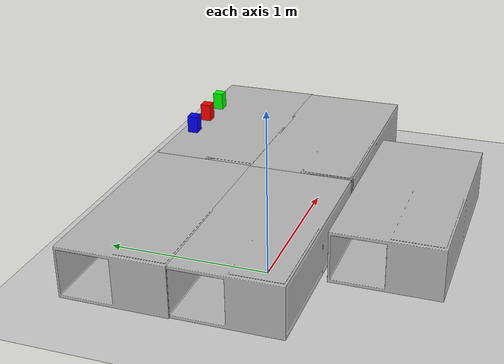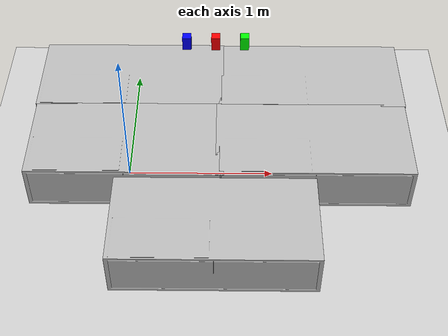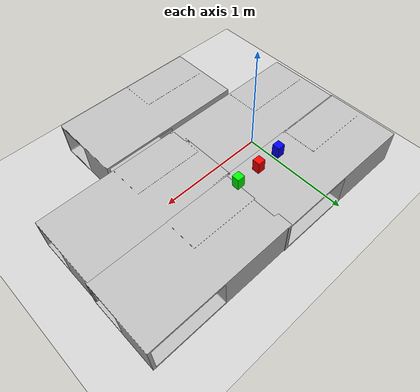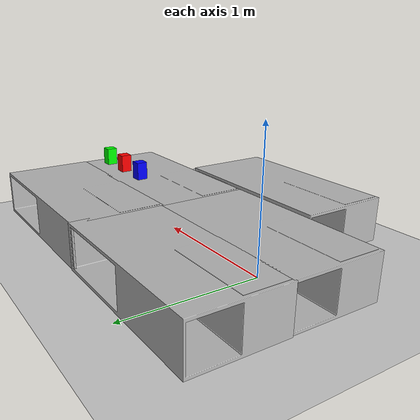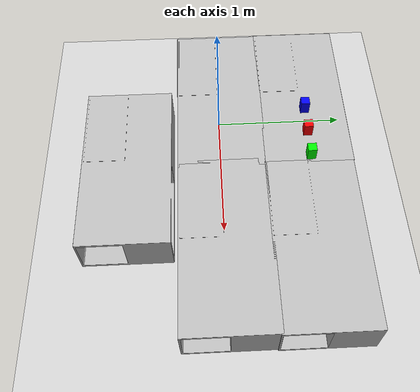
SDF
<sdf version='1.9'>
  <world name='empty_world'>
    <gravity>0 0 -9.8</gravity>
    <magnetic_field>6e-06 2.3e-05 -4.2e-05</magnetic_field>
    <atmosphere type='adiabatic'/>
    <physics type='ode'>
      <max_step_size>0.001</max_step_size>
      <real_time_factor>1</real_time_factor>
      <real_time_update_rate>1000</real_time_update_rate>
    </physics>
    <scene>
      <ambient>0.4 0.4 0.4 1</ambient>
      <background>0.7 0.7 0.7 1</background>
      <shadows>true</shadows>
    </scene>

 <!-- ================= RED BOX ================= -->
<model name="red_box">
  <static>false</static>
  <link name="red_link">
    <pose>0.6 0.6 0.70 0 0 0</pose>
    <inertial>
      <mass>0.5</mass>
      <inertia>
        <ixx>0.001</ixx>
        <ixy>0</ixy>
        <ixz>0</ixz>
        <iyy>0.001</iyy>
        <iyz>0</iyz>
        <izz>0.001</izz>
      </inertia>
    </inertial>
    <collision name="red_collision">
      <geometry>
        <box><size>0.06 0.06 0.1</size></box>
      </geometry>
      <surface>
        <friction>
          <ode>
            <mu>10.0</mu>
            <mu2>10.0</mu2>
          </ode>
        </friction>
        <contact>
          <ode>
            <max_vel>0.001</max_vel>
            <min_depth>0.001</min_depth>
          </ode>
        </contact>
      </surface>
    </collision>
    <visual name="red_visual">
      <geometry>
        <box><size>0.06 0.06 0.1</size></box>
      </geometry>
      <material>
        <ambient>1 0 0 1</ambient>
        <diffuse>1 0 0 1</diffuse>
      </material>
    </visual>
  </link>
</model>

<!-- ================= GREEN BOX ================= -->
<model name="green_box">
  <static>false</static>
  <link name="green_link">
    <pose>0.8 0.6 0.70 0 0 0</pose>
    <inertial>
      <mass>0.5</mass>
      <inertia>
        <ixx>0.001</ixx>
        <ixy>0</ixy>
        <ixz>0</ixz>
        <iyy>0.001</iyy>
        <iyz>0</iyz>
        <izz>0.001</izz>
      </inertia>
    </inertial>
    <collision name="green_collision">
      <geometry>
        <box><size>0.06 0.06 0.1</size></box>
      </geometry>
      <surface>
        <friction>
          <ode>
            <mu>10.0</mu>
            <mu2>10.0</mu2>
          </ode>
        </friction>
        <contact>
          <ode>
            <max_vel>0.001</max_vel>
            <min_depth>0.001</min_depth>
          </ode>
        </contact>
      </surface>
    </collision>
    <visual name="green_visual">
      <geometry>
        <box><size>0.06 0.06 0.1</size></box>
      </geometry>
      <material>
        <ambient>0 1 0 1</ambient>
        <diffuse>0 1 0 1</diffuse>
      </material>
    </visual>
  </link>
</model>

<!-- ================= BLUE BOX ================= -->
<model name="blue_box">
  <static>false</static>
  <link name="blue_link">
    <pose>0.4 0.6 0.70 0 0 0</pose>
    <inertial>
      <mass>0.5</mass>
      <inertia>
        <ixx>0.001</ixx>
        <ixy>0</ixy>
        <ixz>0</ixz>
        <iyy>0.001</iyy>
        <iyz>0</iyz>
        <izz>0.001</izz>
      </inertia>
    </inertial>
    <collision name="blue_collision">
      <geometry>
        <box><size>0.06 0.06 0.1</size></box>
      </geometry>
      <surface>
        <friction>
          <ode>
            <mu>10.0</mu>
            <mu2>10.0</mu2>
          </ode>
        </friction>
        <contact>
          <ode>
            <max_vel>0.001</max_vel>
            <min_depth>0.001</min_depth>
          </ode>
        </contact>
      </surface>
    </collision>
    <visual name="blue_visual">
      <geometry>
        <box><size>0.06 0.06 0.1</size></box>
      </geometry>
      <material>
        <ambient>0 0 1 1</ambient>
        <diffuse>0 0 1 1</diffuse>
      </material>
    </visual>
  </link>
</model>

    <model name='CoffeeTable_5'>
      <static>true</static>
      <model name='aws_robomaker_residential_CoffeeTable_01'>
        <link name='link'>
          <inertial>
            <mass>21.699999999999999</mass>
            <inertia>
              <ixx>0.81374999999999975</ixx>
              <ixy>0</ixy>
              <ixz>0</ixz>
              <iyy>2.76675</iyy>
              <iyz>0</iyz>
              <izz>3.254</izz>
            </inertia>
          </inertial>
          <collision name='collision'>
            <geometry>
              <mesh>
                <uri>model://aws_robomaker_residential_CoffeeTable_01/meshes/aws_CoffeeTable_01_collision.DAE</uri>
                <scale>1 1 1</scale>
              </mesh>
            </geometry>
            <surface>
              <contact>
                <ode>
                  <max_vel>0.01</max_vel>
                </ode>
              </contact>
            </surface>
          </collision>
          <visual name='visual'>
            <geometry>
              <mesh>
                <uri>model://aws_robomaker_residential_CoffeeTable_01/meshes/aws_CoffeeTable_01_visual.DAE</uri>
              </mesh>
            </geometry>
            <meta>
              <layer>1</layer>
            </meta>
          </visual>
        </link>
        <static>true</static>
      </model>
      <pose>0.6 -0.7 0.041983 0 -0 0</pose>
      <self_collide>false</self_collide>
    </model>

    <model name='CoffeeTable_1'>
      <static>true</static>
      <model name='aws_robomaker_residential_CoffeeTable_01'>
        <link name='link'>
          <inertial>
            <mass>21.699999999999999</mass>
            <inertia>
              <ixx>0.81374999999999975</ixx>
              <ixy>0</ixy>
              <ixz>0</ixz>
              <iyy>2.76675</iyy>
              <iyz>0</iyz>
              <izz>3.254</izz>
            </inertia>
          </inertial>
          <collision name='collision'>
            <geometry>
              <mesh>
                <uri>model://aws_robomaker_residential_CoffeeTable_01/meshes/aws_CoffeeTable_01_collision.DAE</uri>
                <scale>1 1 1</scale>
              </mesh>
            </geometry>
            <surface>
              <contact>
                <ode>
                  <max_vel>0.01</max_vel>
                </ode>
              </contact>
            </surface>
          </collision>
          <visual name='visual'>
            <geometry>
              <mesh>
                <uri>model://aws_robomaker_residential_CoffeeTable_01/meshes/aws_CoffeeTable_01_visual.DAE</uri>
              </mesh>
            </geometry>
            <meta>
              <layer>1</layer>
            </meta>
          </visual>
        </link>
        <static>true</static>
      </model>
      <pose>0 0 0.041983 0 -0 0</pose>
      <self_collide>false</self_collide>
    </model>
    <model name='CoffeeTable_2'>
      <static>true</static>
      <model name='aws_robomaker_residential_CoffeeTable_01'>
        <link name='link'>
          <inertial>
            <mass>21.699999999999999</mass>
            <inertia>
              <ixx>0.81374999999999975</ixx>
              <ixy>0</ixy>
              <ixz>0</ixz>
              <iyy>2.76675</iyy>
              <iyz>0</iyz>
              <izz>3.254</izz>
            </inertia>
          </inertial>
          <collision name='collision'>
            <geometry>
              <mesh>
                <uri>model://aws_robomaker_residential_CoffeeTable_01/meshes/aws_CoffeeTable_01_collision.DAE</uri>
                <scale>1 1 1</scale>
              </mesh>
            </geometry>
            <surface>
              <contact>
                <ode>
                  <max_vel>0.01</max_vel>
                </ode>
              </contact>
            </surface>
          </collision>
          <visual name='visual'>
            <geometry>
              <mesh>
                <uri>model://aws_robomaker_residential_CoffeeTable_01/meshes/aws_CoffeeTable_01_visual.DAE</uri>
              </mesh>
            </geometry>
            <meta>
              <layer>1</layer>
            </meta>
          </visual>
        </link>
        <static>true</static>
      </model>
      <pose>1.2577 0 0.041983 0 -0 0</pose>
      <self_collide>false</self_collide>
    </model>
    <model name='CoffeeTable_3'>
      <static>true</static>
      <model name='aws_robomaker_residential_CoffeeTable_01'>
        <link name='link'>
          <inertial>
            <mass>21.699999999999999</mass>
            <inertia>
              <ixx>0.81374999999999975</ixx>
              <ixy>0</ixy>
              <ixz>0</ixz>
              <iyy>2.76675</iyy>
              <iyz>0</iyz>
              <izz>3.254</izz>
            </inertia>
          </inertial>
          <collision name='collision'>
            <geometry>
              <mesh>
                <uri>model://aws_robomaker_residential_CoffeeTable_01/meshes/aws_CoffeeTable_01_collision.DAE</uri>
                <scale>1 1 1</scale>
              </mesh>
            </geometry>
            <surface>
              <contact>
                <ode>
                  <max_vel>0.01</max_vel>
                </ode>
              </contact>
            </surface>
          </collision>
          <visual name='visual'>
            <geometry>
              <mesh>
                <uri>model://aws_robomaker_residential_CoffeeTable_01/meshes/aws_CoffeeTable_01_visual.DAE</uri>
              </mesh>
            </geometry>
            <meta>
              <layer>1</layer>
            </meta>
          </visual>
        </link>
        <static>true</static>
      </model>
      <pose>1.26554 0.637963 0.041983 0 -0 0</pose>
      <self_collide>false</self_collide>
    </model>
    <model name='CoffeeTable_4'>
      <static>true</static>
      <model name='aws_robomaker_residential_CoffeeTable_01'>
        <link name='link'>
          <inertial>
            <mass>21.699999999999999</mass>
            <inertia>
              <ixx>0.81374999999999975</ixx>
              <ixy>0</ixy>
              <ixz>0</ixz>
              <iyy>2.76675</iyy>
              <iyz>0</iyz>
              <izz>3.254</izz>
            </inertia>
          </inertial>
          <collision name='collision'>
            <geometry>
              <mesh>
                <uri>model://aws_robomaker_residential_CoffeeTable_01/meshes/aws_CoffeeTable_01_collision.DAE</uri>
                <scale>1 1 1</scale>
              </mesh>
            </geometry>
            <surface>
              <contact>
                <ode>
                  <max_vel>0.01</max_vel>
                </ode>
              </contact>
            </surface>
          </collision>
          <visual name='visual'>
            <geometry>
              <mesh>
                <uri>model://aws_robomaker_residential_CoffeeTable_01/meshes/aws_CoffeeTable_01_visual.DAE</uri>
              </mesh>
            </geometry>
            <meta>
              <layer>1</layer>
            </meta>
          </visual>
        </link>
        <static>true</static>
      </model>
      <pose>-0.008642 0.643146 0.041983 0 -0 0</pose>
      <self_collide>false</self_collide>
    </model>
    <model name='ground_plane'>
      <static>true</static>
      <link name='link'>
        <collision name='collision'>
          <geometry>
            <plane>
              <normal>0 0 1</normal>
              <size>1 1</size>
            </plane>
          </geometry>
          <surface>
            <friction>
              <ode/>
            </friction>
            <bounce/>
            <contact/>
          </surface>
        </collision>
        <visual name='visual'>
          <geometry>
            <plane>
              <normal>0 0 1</normal>
              <size>100 100</size>
            </plane>
          </geometry>
          <material>
            <ambient>0.8 0.8 0.8 1</ambient>
            <diffuse>0.8 0.8 0.8 1</diffuse>
            <specular>0.8 0.8 0.8 1</specular>
          </material>
        </visual>
        <pose>0 0 0 0 -0 0</pose>
        <inertial>
          <pose>0 0 0 0 -0 0</pose>
          <mass>1</mass>
          <inertia>
            <ixx>1</ixx>
            <ixy>0</ixy>
            <ixz>0</ixz>
            <iyy>1</iyy>
            <iyz>0</iyz>
            <izz>1</izz>
          </inertia>
        </inertial>
        <enable_wind>false</enable_wind>
      </link>
      <pose>0 0 0 0 -0 0</pose>
      <self_collide>false</self_collide>
    </model>
    <light name='sun' type='directional'>
      <pose>0 0 10 0 -0 0</pose>
      <cast_shadows>true</cast_shadows>
      <intensity>1</intensity>
      <direction>-0.5 0.1 -0.9</direction>
      <diffuse>0.8 0.8 0.8 1</diffuse>
      <specular>0.2 0.2 0.2 1</specular>
      <attenuation>
        <range>1000</range>
        <linear>0.01</linear>
        <constant>0.90000000000000002</constant>
        <quadratic>0.001</quadratic>
      </attenuation>
      <spot>
        <inner_angle>0</inner_angle>
        <outer_angle>0</outer_angle>
        <falloff>0</falloff>
      </spot>
    </light>
  </world>
</sdf>
